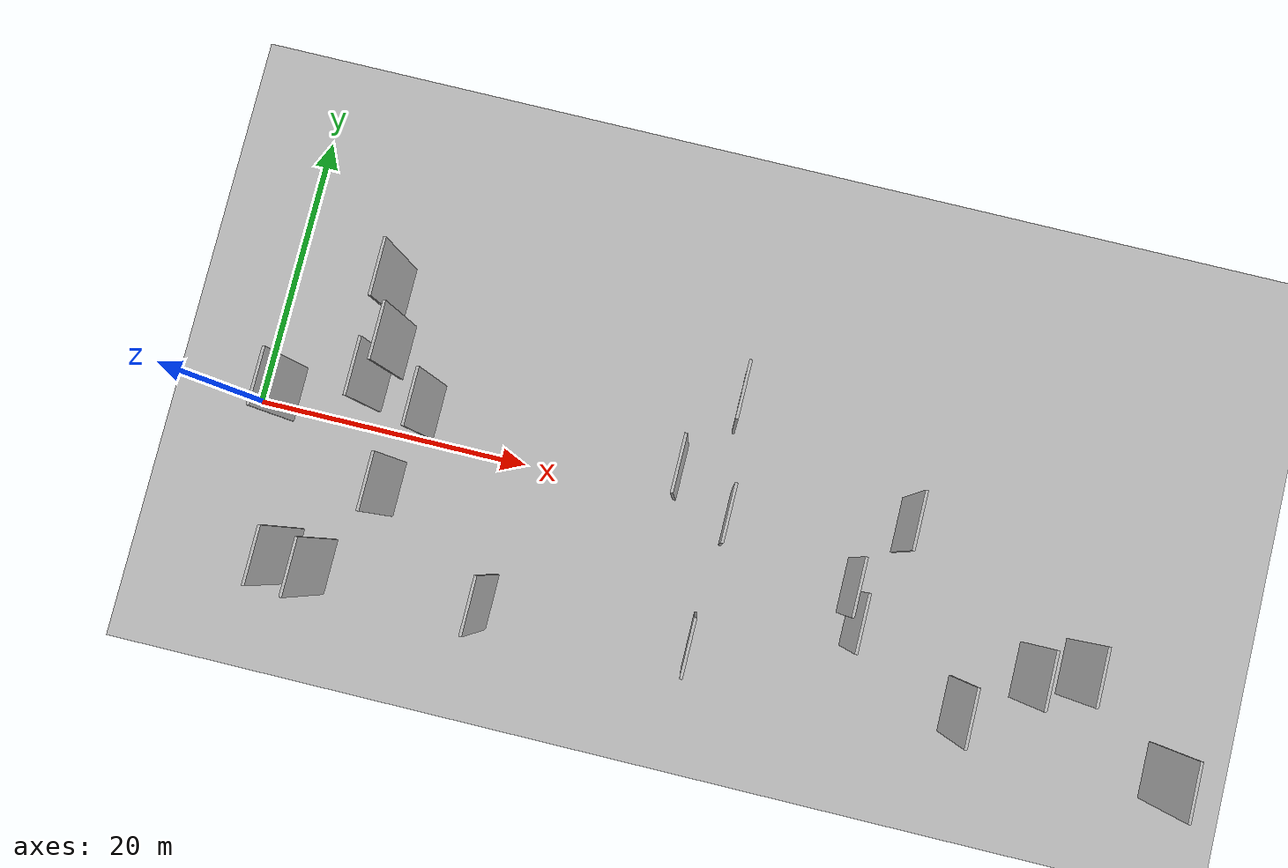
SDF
<?xml version="1.0" encoding="utf-8"?>

<sdf version="1.6">

   <world name="default">

      <gui fullscreen="0">

         <camera name="user_camera">

            <pose>-15 0 4.57585 0 0 0</pose>

            <view_controller>orbit</view_controller>

         </camera>

      </gui>

      <scene>

         <sky>

           <clouds>

             <speed>12</speed>

           </clouds>

         </sky>

         <ambient>0.4 0.4 0.4 1</ambient>

         <background>0.7 0.7 0.7 1</background>

         <shadows>1</shadows>

      </scene>

      <gravity>0 0 -9.8066</gravity>

      <magnetic_field>6e-06 2.3e-05 -4.2e-05</magnetic_field>

      <physics default="0" name="default_physics" type="ode">

         <ode>

            <solver>

               <type>quick</type>

               <iters>10</iters>

               <sor>1.0</sor>

               <use_dynamic_moi_rescaling>0</use_dynamic_moi_rescaling>

            </solver>

            <constraints>

               <cfm>0</cfm>

               <erp>0.2</erp>

               <contact_max_correcting_vel>100</contact_max_correcting_vel>

               <contact_surface_layer>0.001</contact_surface_layer>

            </constraints>

         </ode>

         <max_step_size>0.004</max_step_size>

         <real_time_factor>1</real_time_factor>

         <real_time_update_rate>250</real_time_update_rate>

      </physics>

      <light name="sun" type="directional">

         <cast_shadows>1</cast_shadows>

         <pose>0 0 10 0 0 0</pose>

         <diffuse>0.8 0.8 0.8 1</diffuse>

         <specular>0.2 0.2 0.2 1</specular>

         <attenuation>

            <range>1000</range>

            <constant>0.9</constant>

            <linear>0.01</linear>

            <quadratic>0.001</quadratic>

         </attenuation>

         <direction>-0.5 0.1 -0.9</direction>

      </light>

      <include>

         <name>ground_plane_1</name>

         <uri>model://HANNAS_ground_plane</uri>

         <pose>0 0 0  0 0 0</pose>

      </include>

      <include>

         <name>ground_plane_2</name>

         <uri>model://HANNAS_ground_plane</uri>

         <pose>100 0 0  0 0 0</pose>

      </include>

      <model name="HANNAS_wall_1">

         <static>1</static>

         <pose frame="">67.9201 -10.6584 2.5 0.000000 0.000000 1.570796</pose>

         <link name="link">

            <pose frame="">0 0 5.00 0 0 0</pose>

            <collision name="collision">

               <geometry>

                  <box>

                     <size>4.00 0.2 10.00</size>

                  </box>

               </geometry>

               <max_contacts>10</max_contacts>

               <surface>

                  <contact>

                     <ode/>

                  </contact>

                  <bounce/>

                  <friction>

                     <torsional>

                        <ode/>

                     </torsional>

                     <ode/>

                  </friction>

               </surface>

            </collision>

            <visual name="visual">

               <cast_shadows>0</cast_shadows>

               <geometry>

                  <box>

                     <size>4.00 0.2 10.00</size>

                  </box>

               </geometry>

               <material>

                  <script>

                     <uri>model://HANNAS_wall/materials/scripts</uri>

                     <uri>model://HANNAS_wall/materials/textures</uri>

                     <name>vrc/HANNAS_wall</name>

                  </script>

               </material>

            </visual>

            <self_collide>0</self_collide>

            <enable_wind>0</enable_wind>

            <kinematic>0</kinematic>

         </link>

      </model>

      <model name="HANNAS_wall_2">

         <static>1</static>

         <pose frame="">10.1265 5.8288 2.5 0.000000 0.000000 1.570796</pose>

         <link name="link">

            <pose frame="">0 0 5.00 0 0 0</pose>

            <collision name="collision">

               <geometry>

                  <box>

                     <size>4.00 0.2 10.00</size>

                  </box>

               </geometry>

               <max_contacts>10</max_contacts>

               <surface>

                  <contact>

                     <ode/>

                  </contact>

                  <bounce/>

                  <friction>

                     <torsional>

                        <ode/>

                     </torsional>

                     <ode/>

                  </friction>

               </surface>

            </collision>

            <visual name="visual">

               <cast_shadows>0</cast_shadows>

               <geometry>

                  <box>

                     <size>4.00 0.2 10.00</size>

                  </box>

               </geometry>

               <material>

                  <script>

                     <uri>model://HANNAS_wall/materials/scripts</uri>

                     <uri>model://HANNAS_wall/materials/textures</uri>

                     <name>vrc/HANNAS_wall</name>

                  </script>

               </material>

            </visual>

            <self_collide>0</self_collide>

            <enable_wind>0</enable_wind>

            <kinematic>0</kinematic>

         </link>

      </model>

      <model name="HANNAS_wall_3">

         <static>1</static>

         <pose frame="">9.1932 3.1714 2.5 0.000000 0.000000 1.570796</pose>

         <link name="link">

            <pose frame="">0 0 5.00 0 0 0</pose>

            <collision name="collision">

               <geometry>

                  <box>

                     <size>4.00 0.2 10.00</size>

                  </box>

               </geometry>

               <max_contacts>10</max_contacts>

               <surface>

                  <contact>

                     <ode/>

                  </contact>

                  <bounce/>

                  <friction>

                     <torsional>

                        <ode/>

                     </torsional>

                     <ode/>

                  </friction>

               </surface>

            </collision>

            <visual name="visual">

               <cast_shadows>0</cast_shadows>

               <geometry>

                  <box>

                     <size>4.00 0.2 10.00</size>

                  </box>

               </geometry>

               <material>

                  <script>

                     <uri>model://HANNAS_wall/materials/scripts</uri>

                     <uri>model://HANNAS_wall/materials/textures</uri>

                     <name>vrc/HANNAS_wall</name>

                  </script>

               </material>

            </visual>

            <self_collide>0</self_collide>

            <enable_wind>0</enable_wind>

            <kinematic>0</kinematic>

         </link>

      </model>

      <model name="HANNAS_wall_4">

         <static>1</static>

         <pose frame="">35.2246 -0.3910 2.5 0.000000 0.000000 1.570796</pose>

         <link name="link">

            <pose frame="">0 0 5.00 0 0 0</pose>

            <collision name="collision">

               <geometry>

                  <box>

                     <size>4.00 0.2 10.00</size>

                  </box>

               </geometry>

               <max_contacts>10</max_contacts>

               <surface>

                  <contact>

                     <ode/>

                  </contact>

                  <bounce/>

                  <friction>

                     <torsional>

                        <ode/>

                     </torsional>

                     <ode/>

                  </friction>

               </surface>

            </collision>

            <visual name="visual">

               <cast_shadows>0</cast_shadows>

               <geometry>

                  <box>

                     <size>4.00 0.2 10.00</size>

                  </box>

               </geometry>

               <material>

                  <script>

                     <uri>model://HANNAS_wall/materials/scripts</uri>

                     <uri>model://HANNAS_wall/materials/textures</uri>

                     <name>vrc/HANNAS_wall</name>

                  </script>

               </material>

            </visual>

            <self_collide>0</self_collide>

            <enable_wind>0</enable_wind>

            <kinematic>0</kinematic>

         </link>

      </model>

      <model name="HANNAS_wall_5">

         <static>1</static>

         <pose frame="">31.3119 1.9815 2.5 0.000000 0.000000 1.570796</pose>

         <link name="link">

            <pose frame="">0 0 5.00 0 0 0</pose>

            <collision name="collision">

               <geometry>

                  <box>

                     <size>4.00 0.2 10.00</size>

                  </box>

               </geometry>

               <max_contacts>10</max_contacts>

               <surface>

                  <contact>

                     <ode/>

                  </contact>

                  <bounce/>

                  <friction>

                     <torsional>

                        <ode/>

                     </torsional>

                     <ode/>

                  </friction>

               </surface>

            </collision>

            <visual name="visual">

               <cast_shadows>0</cast_shadows>

               <geometry>

                  <box>

                     <size>4.00 0.2 10.00</size>

                  </box>

               </geometry>

               <material>

                  <script>

                     <uri>model://HANNAS_wall/materials/scripts</uri>

                     <uri>model://HANNAS_wall/materials/textures</uri>

                     <name>vrc/HANNAS_wall</name>

                  </script>

               </material>

            </visual>

            <self_collide>0</self_collide>

            <enable_wind>0</enable_wind>

            <kinematic>0</kinematic>

         </link>

      </model>

      <model name="HANNAS_wall_6">

         <static>1</static>

         <pose frame="">53.2290 -9.4617 2.5 0.000000 0.000000 1.570796</pose>

         <link name="link">

            <pose frame="">0 0 5.00 0 0 0</pose>

            <collision name="collision">

               <geometry>

                  <box>

                     <size>4.00 0.2 10.00</size>

                  </box>

               </geometry>

               <max_contacts>10</max_contacts>

               <surface>

                  <contact>

                     <ode/>

                  </contact>

                  <bounce/>

                  <friction>

                     <torsional>

                        <ode/>

                     </torsional>

                     <ode/>

                  </friction>

               </surface>

            </collision>

            <visual name="visual">

               <cast_shadows>0</cast_shadows>

               <geometry>

                  <box>

                     <size>4.00 0.2 10.00</size>

                  </box>

               </geometry>

               <material>

                  <script>

                     <uri>model://HANNAS_wall/materials/scripts</uri>

                     <uri>model://HANNAS_wall/materials/textures</uri>

                     <name>vrc/HANNAS_wall</name>

                  </script>

               </material>

            </visual>

            <self_collide>0</self_collide>

            <enable_wind>0</enable_wind>

            <kinematic>0</kinematic>

         </link>

      </model>

      <model name="HANNAS_wall_7">

         <static>1</static>

         <pose frame="">34.6842 -9.3826 2.5 0.000000 0.000000 1.570796</pose>

         <link name="link">

            <pose frame="">0 0 5.00 0 0 0</pose>

            <collision name="collision">

               <geometry>

                  <box>

                     <size>4.00 0.2 10.00</size>

                  </box>

               </geometry>

               <max_contacts>10</max_contacts>

               <surface>

                  <contact>

                     <ode/>

                  </contact>

                  <bounce/>

                  <friction>

                     <torsional>

                        <ode/>

                     </torsional>

                     <ode/>

                  </friction>

               </surface>

            </collision>

            <visual name="visual">

               <cast_shadows>0</cast_shadows>

               <geometry>

                  <box>

                     <size>4.00 0.2 10.00</size>

                  </box>

               </geometry>

               <material>

                  <script>

                     <uri>model://HANNAS_wall/materials/scripts</uri>

                     <uri>model://HANNAS_wall/materials/textures</uri>

                     <name>vrc/HANNAS_wall</name>

                  </script>

               </material>

            </visual>

            <self_collide>0</self_collide>

            <enable_wind>0</enable_wind>

            <kinematic>0</kinematic>

         </link>

      </model>

      <model name="HANNAS_wall_8">

         <static>1</static>

         <pose frame="">11.9442 -3.8819 2.5 0.000000 0.000000 1.570796</pose>

         <link name="link">

            <pose frame="">0 0 5.00 0 0 0</pose>

            <collision name="collision">

               <geometry>

                  <box>

                     <size>4.00 0.2 10.00</size>

                  </box>

               </geometry>

               <max_contacts>10</max_contacts>

               <surface>

                  <contact>

                     <ode/>

                  </contact>

                  <bounce/>

                  <friction>

                     <torsional>

                        <ode/>

                     </torsional>

                     <ode/>

                  </friction>

               </surface>

            </collision>

            <visual name="visual">

               <cast_shadows>0</cast_shadows>

               <geometry>

                  <box>

                     <size>4.00 0.2 10.00</size>

                  </box>

               </geometry>

               <material>

                  <script>

                     <uri>model://HANNAS_wall/materials/scripts</uri>

                     <uri>model://HANNAS_wall/materials/textures</uri>

                     <name>vrc/HANNAS_wall</name>

                  </script>

               </material>

            </visual>

            <self_collide>0</self_collide>

            <enable_wind>0</enable_wind>

            <kinematic>0</kinematic>

         </link>

      </model>

      <model name="HANNAS_wall_9">

         <static>1</static>

         <pose frame="">9.0871 9.8974 2.5 0.000000 0.000000 1.570796</pose>

         <link name="link">

            <pose frame="">0 0 5.00 0 0 0</pose>

            <collision name="collision">

               <geometry>

                  <box>

                     <size>4.00 0.2 10.00</size>

                  </box>

               </geometry>

               <max_contacts>10</max_contacts>

               <surface>

                  <contact>

                     <ode/>

                  </contact>

                  <bounce/>

                  <friction>

                     <torsional>

                        <ode/>

                     </torsional>

                     <ode/>

                  </friction>

               </surface>

            </collision>

            <visual name="visual">

               <cast_shadows>0</cast_shadows>

               <geometry>

                  <box>

                     <size>4.00 0.2 10.00</size>

                  </box>

               </geometry>

               <material>

                  <script>

                     <uri>model://HANNAS_wall/materials/scripts</uri>

                     <uri>model://HANNAS_wall/materials/textures</uri>

                     <name>vrc/HANNAS_wall</name>

                  </script>

               </material>

            </visual>

            <self_collide>0</self_collide>

            <enable_wind>0</enable_wind>

            <kinematic>0</kinematic>

         </link>

      </model>

      <model name="HANNAS_wall_10">

         <static>1</static>

         <pose frame="">47.2602 2.0162 2.5 0.000000 0.000000 1.570796</pose>

         <link name="link">

            <pose frame="">0 0 5.00 0 0 0</pose>

            <collision name="collision">

               <geometry>

                  <box>

                     <size>4.00 0.2 10.00</size>

                  </box>

               </geometry>

               <max_contacts>10</max_contacts>

               <surface>

                  <contact>

                     <ode/>

                  </contact>

                  <bounce/>

                  <friction>

                     <torsional>

                        <ode/>

                     </torsional>

                     <ode/>

                  </friction>

               </surface>

            </collision>

            <visual name="visual">

               <cast_shadows>0</cast_shadows>

               <geometry>

                  <box>

                     <size>4.00 0.2 10.00</size>

                  </box>

               </geometry>

               <material>

                  <script>

                     <uri>model://HANNAS_wall/materials/scripts</uri>

                     <uri>model://HANNAS_wall/materials/textures</uri>

                     <name>vrc/HANNAS_wall</name>

                  </script>

               </material>

            </visual>

            <self_collide>0</self_collide>

            <enable_wind>0</enable_wind>

            <kinematic>0</kinematic>

         </link>

      </model>

      <model name="HANNAS_wall_11">

         <static>1</static>

         <pose frame="">13.3473 2.1331 2.5 0.000000 0.000000 1.570796</pose>

         <link name="link">

            <pose frame="">0 0 5.00 0 0 0</pose>

            <collision name="collision">

               <geometry>

                  <box>

                     <size>4.00 0.2 10.00</size>

                  </box>

               </geometry>

               <max_contacts>10</max_contacts>

               <surface>

                  <contact>

                     <ode/>

                  </contact>

                  <bounce/>

                  <friction>

                     <torsional>

                        <ode/>

                     </torsional>

                     <ode/>

                  </friction>

               </surface>

            </collision>

            <visual name="visual">

               <cast_shadows>0</cast_shadows>

               <geometry>

                  <box>

                     <size>4.00 0.2 10.00</size>

                  </box>

               </geometry>

               <material>

                  <script>

                     <uri>model://HANNAS_wall/materials/scripts</uri>

                     <uri>model://HANNAS_wall/materials/textures</uri>

                     <name>vrc/HANNAS_wall</name>

                  </script>

               </material>

            </visual>

            <self_collide>0</self_collide>

            <enable_wind>0</enable_wind>

            <kinematic>0</kinematic>

         </link>

      </model>

      <model name="HANNAS_wall_12">

         <static>1</static>

         <pose frame="">45.1638 -5.2572 2.5 0.000000 0.000000 1.570796</pose>

         <link name="link">

            <pose frame="">0 0 5.00 0 0 0</pose>

            <collision name="collision">

               <geometry>

                  <box>

                     <size>4.00 0.2 10.00</size>

                  </box>

               </geometry>

               <max_contacts>10</max_contacts>

               <surface>

                  <contact>

                     <ode/>

                  </contact>

                  <bounce/>

                  <friction>

                     <torsional>

                        <ode/>

                     </torsional>

                     <ode/>

                  </friction>

               </surface>

            </collision>

            <visual name="visual">

               <cast_shadows>0</cast_shadows>

               <geometry>

                  <box>

                     <size>4.00 0.2 10.00</size>

                  </box>

               </geometry>

               <material>

                  <script>

                     <uri>model://HANNAS_wall/materials/scripts</uri>

                     <uri>model://HANNAS_wall/materials/textures</uri>

                     <name>vrc/HANNAS_wall</name>

                  </script>

               </material>

            </visual>

            <self_collide>0</self_collide>

            <enable_wind>0</enable_wind>

            <kinematic>0</kinematic>

         </link>

      </model>

      <model name="HANNAS_wall_13">

         <static>1</static>

         <pose frame="">20.3739 -10.0893 2.5 0.000000 0.000000 1.570796</pose>

         <link name="link">

            <pose frame="">0 0 5.00 0 0 0</pose>

            <collision name="collision">

               <geometry>

                  <box>

                     <size>4.00 0.2 10.00</size>

                  </box>

               </geometry>

               <max_contacts>10</max_contacts>

               <surface>

                  <contact>

                     <ode/>

                  </contact>

                  <bounce/>

                  <friction>

                     <torsional>

                        <ode/>

                     </torsional>

                     <ode/>

                  </friction>

               </surface>

            </collision>

            <visual name="visual">

               <cast_shadows>0</cast_shadows>

               <geometry>

                  <box>

                     <size>4.00 0.2 10.00</size>

                  </box>

               </geometry>

               <material>

                  <script>

                     <uri>model://HANNAS_wall/materials/scripts</uri>

                     <uri>model://HANNAS_wall/materials/textures</uri>

                     <name>vrc/HANNAS_wall</name>

                  </script>

               </material>

            </visual>

            <self_collide>0</self_collide>

            <enable_wind>0</enable_wind>

            <kinematic>0</kinematic>

         </link>

      </model>

      <model name="HANNAS_wall_14">

         <static>1</static>

         <pose frame="">6.0540 -10.2112 2.5 0.000000 0.000000 1.570796</pose>

         <link name="link">

            <pose frame="">0 0 5.00 0 0 0</pose>

            <collision name="collision">

               <geometry>

                  <box>

                     <size>4.00 0.2 10.00</size>

                  </box>

               </geometry>

               <max_contacts>10</max_contacts>

               <surface>

                  <contact>

                     <ode/>

                  </contact>

                  <bounce/>

                  <friction>

                     <torsional>

                        <ode/>

                     </torsional>

                     <ode/>

                  </friction>

               </surface>

            </collision>

            <visual name="visual">

               <cast_shadows>0</cast_shadows>

               <geometry>

                  <box>

                     <size>4.00 0.2 10.00</size>

                  </box>

               </geometry>

               <material>

                  <script>

                     <uri>model://HANNAS_wall/materials/scripts</uri>

                     <uri>model://HANNAS_wall/materials/textures</uri>

                     <name>vrc/HANNAS_wall</name>

                  </script>

               </material>

            </visual>

            <self_collide>0</self_collide>

            <enable_wind>0</enable_wind>

            <kinematic>0</kinematic>

         </link>

      </model>

      <model name="HANNAS_wall_15">

         <static>1</static>

         <pose frame="">60.7754 -4.9797 2.5 0.000000 0.000000 1.570796</pose>

         <link name="link">

            <pose frame="">0 0 5.00 0 0 0</pose>

            <collision name="collision">

               <geometry>

                  <box>

                     <size>4.00 0.2 10.00</size>

                  </box>

               </geometry>

               <max_contacts>10</max_contacts>

               <surface>

                  <contact>

                     <ode/>

                  </contact>

                  <bounce/>

                  <friction>

                     <torsional>

                        <ode/>

                     </torsional>

                     <ode/>

                  </friction>

               </surface>

            </collision>

            <visual name="visual">

               <cast_shadows>0</cast_shadows>

               <geometry>

                  <box>

                     <size>4.00 0.2 10.00</size>

                  </box>

               </geometry>

               <material>

                  <script>

                     <uri>model://HANNAS_wall/materials/scripts</uri>

                     <uri>model://HANNAS_wall/materials/textures</uri>

                     <name>vrc/HANNAS_wall</name>

                  </script>

               </material>

            </visual>

            <self_collide>0</self_collide>

            <enable_wind>0</enable_wind>

            <kinematic>0</kinematic>

         </link>

      </model>

      <model name="HANNAS_wall_16">

         <static>1</static>

         <pose frame="">3.2759 1.0590 2.5 0.000000 0.000000 1.570796</pose>

         <link name="link">

            <pose frame="">0 0 5.00 0 0 0</pose>

            <collision name="collision">

               <geometry>

                  <box>

                     <size>4.00 0.2 10.00</size>

                  </box>

               </geometry>

               <max_contacts>10</max_contacts>

               <surface>

                  <contact>

                     <ode/>

                  </contact>

                  <bounce/>

                  <friction>

                     <torsional>

                        <ode/>

                     </torsional>

                     <ode/>

                  </friction>

               </surface>

            </collision>

            <visual name="visual">

               <cast_shadows>0</cast_shadows>

               <geometry>

                  <box>

                     <size>4.00 0.2 10.00</size>

                  </box>

               </geometry>

               <material>

                  <script>

                     <uri>model://HANNAS_wall/materials/scripts</uri>

                     <uri>model://HANNAS_wall/materials/textures</uri>

                     <name>vrc/HANNAS_wall</name>

                  </script>

               </material>

            </visual>

            <self_collide>0</self_collide>

            <enable_wind>0</enable_wind>

            <kinematic>0</kinematic>

         </link>

      </model>

      <model name="HANNAS_wall_17">

         <static>1</static>

         <pose frame="">44.4526 -3.0589 2.5 0.000000 0.000000 1.570796</pose>

         <link name="link">

            <pose frame="">0 0 5.00 0 0 0</pose>

            <collision name="collision">

               <geometry>

                  <box>

                     <size>4.00 0.2 10.00</size>

                  </box>

               </geometry>

               <max_contacts>10</max_contacts>

               <surface>

                  <contact>

                     <ode/>

                  </contact>

                  <bounce/>

                  <friction>

                     <torsional>

                        <ode/>

                     </torsional>

                     <ode/>

                  </friction>

               </surface>

            </collision>

            <visual name="visual">

               <cast_shadows>0</cast_shadows>

               <geometry>

                  <box>

                     <size>4.00 0.2 10.00</size>

                  </box>

               </geometry>

               <material>

                  <script>

                     <uri>model://HANNAS_wall/materials/scripts</uri>

                     <uri>model://HANNAS_wall/materials/textures</uri>

                     <name>vrc/HANNAS_wall</name>

                  </script>

               </material>

            </visual>

            <self_collide>0</self_collide>

            <enable_wind>0</enable_wind>

            <kinematic>0</kinematic>

         </link>

      </model>

      <model name="HANNAS_wall_18">

         <static>1</static>

         <pose frame="">34.2787 7.6285 2.5 0.000000 0.000000 1.570796</pose>

         <link name="link">

            <pose frame="">0 0 5.00 0 0 0</pose>

            <collision name="collision">

               <geometry>

                  <box>

                     <size>4.00 0.2 10.00</size>

                  </box>

               </geometry>

               <max_contacts>10</max_contacts>

               <surface>

                  <contact>

                     <ode/>

                  </contact>

                  <bounce/>

                  <friction>

                     <torsional>

                        <ode/>

                     </torsional>

                     <ode/>

                  </friction>

               </surface>

            </collision>

            <visual name="visual">

               <cast_shadows>0</cast_shadows>

               <geometry>

                  <box>

                     <size>4.00 0.2 10.00</size>

                  </box>

               </geometry>

               <material>

                  <script>

                     <uri>model://HANNAS_wall/materials/scripts</uri>

                     <uri>model://HANNAS_wall/materials/textures</uri>

                     <name>vrc/HANNAS_wall</name>

                  </script>

               </material>

            </visual>

            <self_collide>0</self_collide>

            <enable_wind>0</enable_wind>

            <kinematic>0</kinematic>

         </link>

      </model>

      <model name="HANNAS_wall_19">

         <static>1</static>

         <pose frame="">8.5747 -10.3851 2.5 0.000000 0.000000 1.570796</pose>

         <link name="link">

            <pose frame="">0 0 5.00 0 0 0</pose>

            <collision name="collision">

               <geometry>

                  <box>

                     <size>4.00 0.2 10.00</size>

                  </box>

               </geometry>

               <max_contacts>10</max_contacts>

               <surface>

                  <contact>

                     <ode/>

                  </contact>

                  <bounce/>

                  <friction>

                     <torsional>

                        <ode/>

                     </torsional>

                     <ode/>

                  </friction>

               </surface>

            </collision>

            <visual name="visual">

               <cast_shadows>0</cast_shadows>

               <geometry>

                  <box>

                     <size>4.00 0.2 10.00</size>

                  </box>

               </geometry>

               <material>

                  <script>

                     <uri>model://HANNAS_wall/materials/scripts</uri>

                     <uri>model://HANNAS_wall/materials/textures</uri>

                     <name>vrc/HANNAS_wall</name>

                  </script>

               </material>

            </visual>

            <self_collide>0</self_collide>

            <enable_wind>0</enable_wind>

            <kinematic>0</kinematic>

         </link>

      </model>

      <model name="HANNAS_wall_20">

         <static>1</static>

         <pose frame="">57.6354 -5.9739 2.5 0.000000 0.000000 1.570796</pose>

         <link name="link">

            <pose frame="">0 0 5.00 0 0 0</pose>

            <collision name="collision">

               <geometry>

                  <box>

                     <size>4.00 0.2 10.00</size>

                  </box>

               </geometry>

               <max_contacts>10</max_contacts>

               <surface>

                  <contact>

                     <ode/>

                  </contact>

                  <bounce/>

                  <friction>

                     <torsional>

                        <ode/>

                     </torsional>

                     <ode/>

                  </friction>

               </surface>

            </collision>

            <visual name="visual">

               <cast_shadows>0</cast_shadows>

               <geometry>

                  <box>

                     <size>4.00 0.2 10.00</size>

                  </box>

               </geometry>

               <material>

                  <script>

                     <uri>model://HANNAS_wall/materials/scripts</uri>

                     <uri>model://HANNAS_wall/materials/textures</uri>

                     <name>vrc/HANNAS_wall</name>

                  </script>

               </material>

            </visual>

            <self_collide>0</self_collide>

            <enable_wind>0</enable_wind>

            <kinematic>0</kinematic>

         </link>

      </model>

   </world>

</sdf>

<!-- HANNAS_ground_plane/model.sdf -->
<sdf version="1.4">
<model name="HANNAS_ground_plane">
  <static>true</static>
    <link name="link">
      <collision name="collision">
        <geometry>
          <plane>
            <normal>0 0 1</normal>
            <size>1000 1000</size>
          </plane>
        </geometry>
        <surface>
          <friction>
            <ode>
              <mu>100</mu>
              <mu2>50</mu2>
            </ode>
          </friction>
        </surface>
      </collision>
      <visual name="visual">
        <cast_shadows>false</cast_shadows>
        <geometry>
          <plane>
            <normal>0 0 1</normal>
            <size>1000 1000</size>
          </plane>
        </geometry>
        <material>
          <script>
            <uri>model://HANNAS_ground_plane/materials/scripts/HANNAS_ground_plane.material</uri>
	    <uri>model://HANNAS_ground_plane/materials/textures</uri>
            <name>HANNASGroundPlane/Image</name>
          </script>
        </material>
      </visual>
    </link>
  </model>
</sdf>
